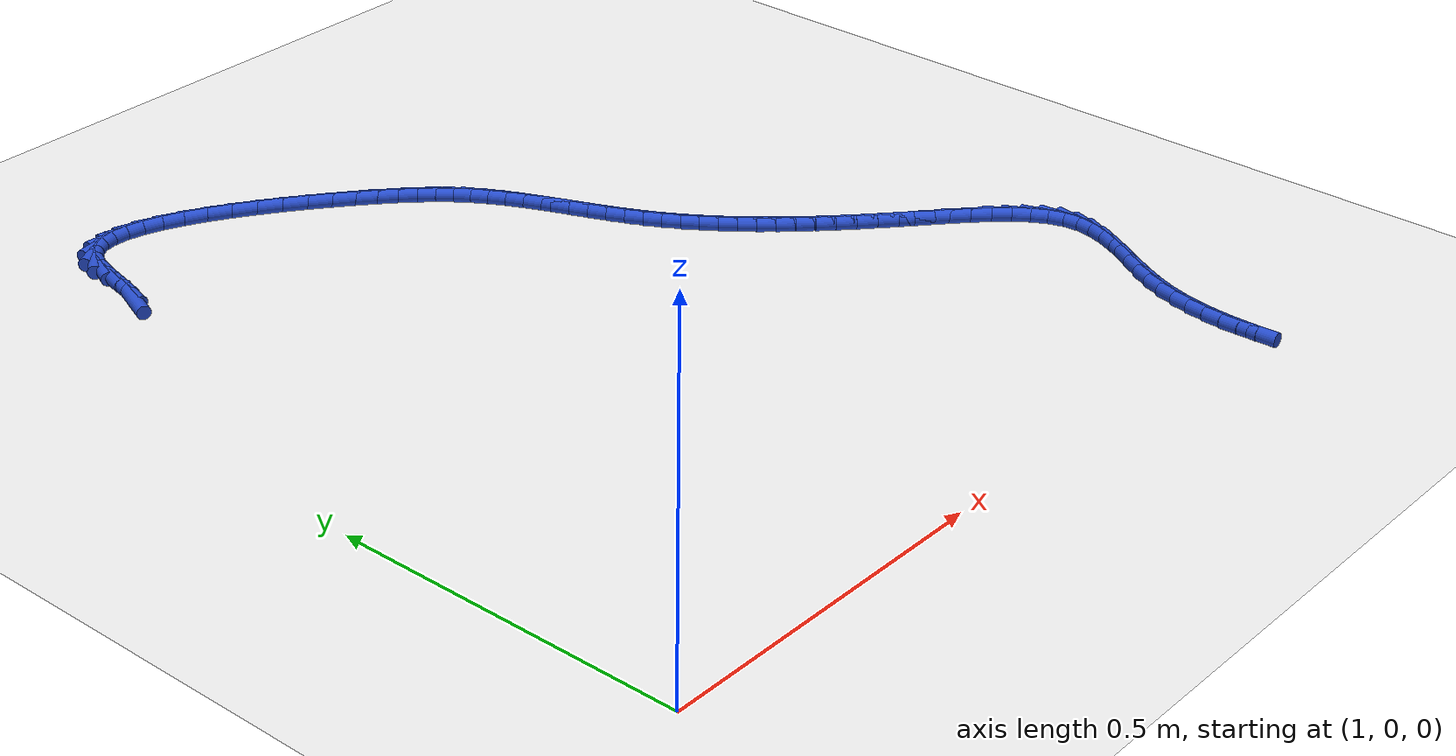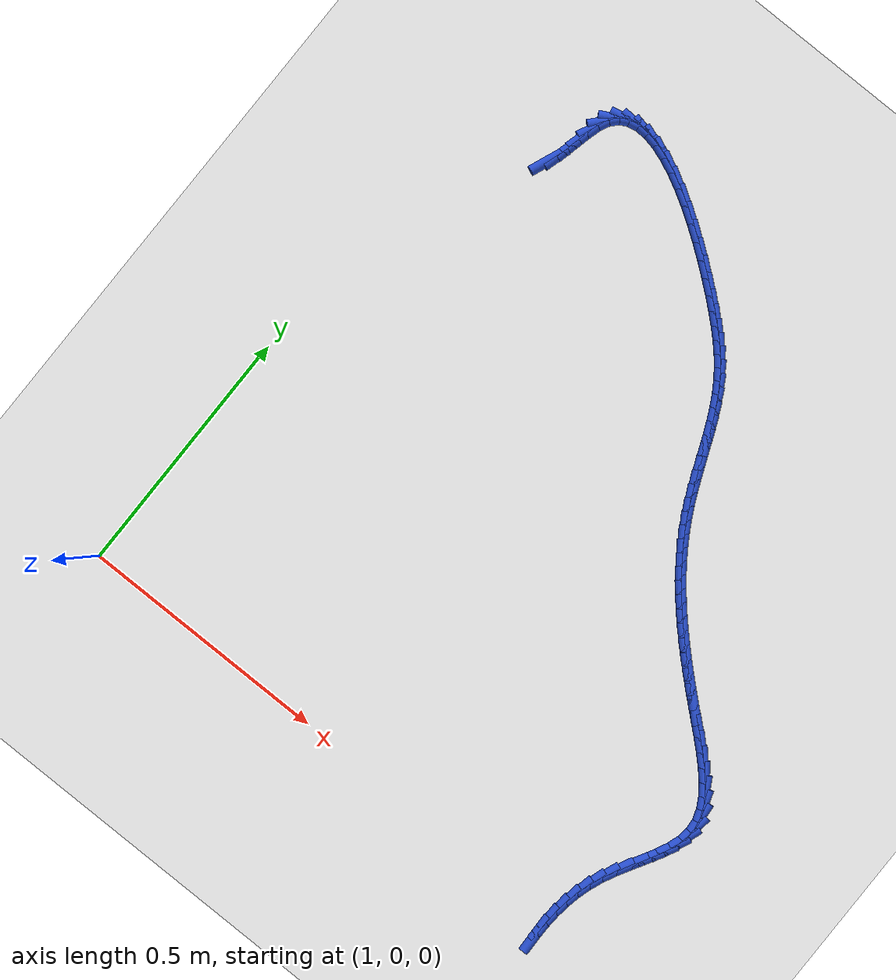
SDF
<sdf version="1.6">
 <world name="default">
  <model name="ground_plane">
   <static>1</static>
   <link name="link">
    <collision name="collision">
     <geometry><plane><normal>0 0 1</normal><size>100 100</size></plane></geometry>
     <surface><friction><ode><mu>100</mu><mu2>50</mu2></ode></friction></surface>
    </collision>
    <visual name="visual">
     <cast_shadows>0</cast_shadows>
     <geometry><plane><normal>0 0 1</normal><size>100 100</size></plane></geometry>
     <material>
      <script><uri>file://media/materials/scripts/gazebo.material</uri><name>Gazebo/WhiteGlow</name></script>
     </material>
    </visual>
   </link>
  </model>
  <model name="line">
   <link name="link_66">
    <pose>1.1893030818605963 1.0974402068774374 0.01 0 1.57 1.1950962762282933</pose>
    <collision name="collision">
     <geometry><cylinder><radius>0.01</radius><length>0.08</length></cylinder></geometry>
    </collision>
    <visual name="visual">
     <material>
      <script><name>Gazebo/Blue</name><uri>file://media/materials/scripts/gazebo.material</uri></script>
     </material>
     <geometry><cylinder><radius>0.01</radius><length>0.08</length></cylinder></geometry>
    </visual>
   </link>
   <link name="link_67">
    <pose>1.1990013495951997 1.122027933497424 0.01 0 1.57 1.3153344520101298</pose>
    <collision name="collision">
     <geometry><cylinder><radius>0.01</radius><length>0.08</length></cylinder></geometry>
    </collision>
    <visual name="visual">
     <material>
      <script><name>Gazebo/Blue</name><uri>file://media/materials/scripts/gazebo.material</uri></script>
     </material>
     <geometry><cylinder><radius>0.01</radius><length>0.08</length></cylinder></geometry>
    </visual>
   </link>
   <link name="link_68">
    <pose>1.2061188783692312 1.1492806072459916 0.01 0 1.57 1.3476424005962873</pose>
    <collision name="collision">
     <geometry><cylinder><radius>0.01</radius><length>0.08</length></cylinder></geometry>
    </collision>
    <visual name="visual">
     <material>
      <script><name>Gazebo/Blue</name><uri>file://media/materials/scripts/gazebo.material</uri></script>
     </material>
     <geometry><cylinder><radius>0.01</radius><length>0.08</length></cylinder></geometry>
    </visual>
   </link>
   <link name="link_69">
    <pose>1.2123724844480206 1.1768376164840482 0.01 0 1.57 1.299013703045849</pose>
    <collision name="collision">
     <geometry><cylinder><radius>0.01</radius><length>0.08</length></cylinder></geometry>
    </collision>
    <visual name="visual">
     <material>
      <script><name>Gazebo/Blue</name><uri>file://media/materials/scripts/gazebo.material</uri></script>
     </material>
     <geometry><cylinder><radius>0.01</radius><length>0.08</length></cylinder></geometry>
    </visual>
   </link>
   <link name="link_70">
    <pose>1.2194789840968956 1.2023383495725006 0.01 0 1.57 1.140623644467258</pose>
    <collision name="collision">
     <geometry><cylinder><radius>0.01</radius><length>0.08</length></cylinder></geometry>
    </collision>
    <visual name="visual">
     <material>
      <script><name>Gazebo/Blue</name><uri>file://media/materials/scripts/gazebo.material</uri></script>
     </material>
     <geometry><cylinder><radius>0.01</radius><length>0.08</length></cylinder></geometry>
    </visual>
   </link>
   <link name="link_71">
    <pose>1.2291537634521648 1.2234241077929882 0.01 0 1.57 0.8430474923591013</pose>
    <collision name="collision">
     <geometry><cylinder><radius>0.01</radius><length>0.08</length></cylinder></geometry>
    </collision>
    <visual name="visual">
     <material>
      <script><name>Gazebo/Blue</name><uri>file://media/materials/scripts/gazebo.material</uri></script>
     </material>
     <geometry><cylinder><radius>0.01</radius><length>0.08</length></cylinder></geometry>
    </visual>
   </link>
   <link name="link_72">
    <pose>1.2425609192650893 1.238473589457515 0.01 0 1.57 0.4998736898436517</pose>
    <collision name="collision">
     <geometry><cylinder><radius>0.01</radius><length>0.08</length></cylinder></geometry>
    </collision>
    <visual name="visual">
     <material>
      <script><name>Gazebo/Blue</name><uri>file://media/materials/scripts/gazebo.material</uri></script>
     </material>
     <geometry><cylinder><radius>0.01</radius><length>0.08</length></cylinder></geometry>
    </visual>
   </link>
   <link name="link_73">
    <pose>1.2594819613897101 1.2477148219235825 0.01 0 1.57 0.19478090766457262</pose>
    <collision name="collision">
     <geometry><cylinder><radius>0.01</radius><length>0.08</length></cylinder></geometry>
    </collision>
    <visual name="visual">
     <material>
      <script><name>Gazebo/Blue</name><uri>file://media/materials/scripts/gazebo.material</uri></script>
     </material>
     <geometry><cylinder><radius>0.01</radius><length>0.08</length></cylinder></geometry>
    </visual>
   </link>
   <link name="link_74">
    <pose>1.2794851355663666 1.2516610916673905 0.01 0 1.57 -0.03686080259224466</pose>
    <collision name="collision">
     <geometry><cylinder><radius>0.01</radius><length>0.08</length></cylinder></geometry>
    </collision>
    <visual name="visual">
     <material>
      <script><name>Gazebo/Blue</name><uri>file://media/materials/scripts/gazebo.material</uri></script>
     </material>
     <geometry><cylinder><radius>0.01</radius><length>0.08</length></cylinder></geometry>
    </visual>
   </link>
   <link name="link_75">
    <pose>1.302138687535398 1.250825685165139 0.01 0 1.57 -0.20239152097631471</pose>
    <collision name="collision">
     <geometry><cylinder><radius>0.01</radius><length>0.08</length></cylinder></geometry>
    </collision>
    <visual name="visual">
     <material>
      <script><name>Gazebo/Blue</name><uri>file://media/materials/scripts/gazebo.material</uri></script>
     </material>
     <geometry><cylinder><radius>0.01</radius><length>0.08</length></cylinder></geometry>
    </visual>
   </link>
   <link name="link_76">
    <pose>1.327010863037144 1.245721888893028 0.01 0 1.57 -0.3208236101117591</pose>
    <collision name="collision">
     <geometry><cylinder><radius>0.01</radius><length>0.08</length></cylinder></geometry>
    </collision>
    <visual name="visual">
     <material>
      <script><name>Gazebo/Blue</name><uri>file://media/materials/scripts/gazebo.material</uri></script>
     </material>
     <geometry><cylinder><radius>0.01</radius><length>0.08</length></cylinder></geometry>
    </visual>
   </link>
   <link name="link_77">
    <pose>1.3536699078119445 1.236862989327258 0.01 0 1.57 -0.4077426034506965</pose>
    <collision name="collision">
     <geometry><cylinder><radius>0.01</radius><length>0.08</length></cylinder></geometry>
    </collision>
    <visual name="visual">
     <material>
      <script><name>Gazebo/Blue</name><uri>file://media/materials/scripts/gazebo.material</uri></script>
     </material>
     <geometry><cylinder><radius>0.01</radius><length>0.08</length></cylinder></geometry>
    </visual>
   </link>
   <link name="link_78">
    <pose>1.3816840676001394 1.2247622729440288 0.01 0 1.57 -0.473563795478326</pose>
    <collision name="collision">
     <geometry><cylinder><radius>0.01</radius><length>0.08</length></cylinder></geometry>
    </collision>
    <visual name="visual">
     <material>
      <script><name>Gazebo/Blue</name><uri>file://media/materials/scripts/gazebo.material</uri></script>
     </material>
     <geometry><cylinder><radius>0.01</radius><length>0.08</length></cylinder></geometry>
    </visual>
   </link>
   <link name="link_79">
    <pose>1.4106215881420676 1.209933026219541 0.01 0 1.57 -0.5249630856622551</pose>
    <collision name="collision">
     <geometry><cylinder><radius>0.01</radius><length>0.08</length></cylinder></geometry>
    </collision>
    <visual name="visual">
     <material>
      <script><name>Gazebo/Blue</name><uri>file://media/materials/scripts/gazebo.material</uri></script>
     </material>
     <geometry><cylinder><radius>0.01</radius><length>0.08</length></cylinder></geometry>
    </visual>
   </link>
   <link name="link_80">
    <pose>1.4400507151780688 1.192888535629994 0.01 0 1.57 -0.5662640610322742</pose>
    <collision name="collision">
     <geometry><cylinder><radius>0.01</radius><length>0.08</length></cylinder></geometry>
    </collision>
    <visual name="visual">
     <material>
      <script><name>Gazebo/Blue</name><uri>file://media/materials/scripts/gazebo.material</uri></script>
     </material>
     <geometry><cylinder><radius>0.01</radius><length>0.08</length></cylinder></geometry>
    </visual>
   </link>
   <link name="link_81">
    <pose>1.4695396944484826 1.174142087651589 0.01 0 1.57 -0.6003521095952925</pose>
    <collision name="collision">
     <geometry><cylinder><radius>0.01</radius><length>0.08</length></cylinder></geometry>
    </collision>
    <visual name="visual">
     <material>
      <script><name>Gazebo/Blue</name><uri>file://media/materials/scripts/gazebo.material</uri></script>
     </material>
     <geometry><cylinder><radius>0.01</radius><length>0.08</length></cylinder></geometry>
    </visual>
   </link>
   <link name="link_82">
    <pose>1.4986567716936496 1.1542069687605245 0.01 0 1.57 -0.6292333115517629</pose>
    <collision name="collision">
     <geometry><cylinder><radius>0.01</radius><length>0.08</length></cylinder></geometry>
    </collision>
    <visual name="visual">
     <material>
      <script><name>Gazebo/Blue</name><uri>file://media/materials/scripts/gazebo.material</uri></script>
     </material>
     <geometry><cylinder><radius>0.01</radius><length>0.08</length></cylinder></geometry>
    </visual>
   </link>
   <link name="link_83">
    <pose>1.5269701926539083 1.1335964654330026 0.01 0 1.57 -0.6543802176660588</pose>
    <collision name="collision">
     <geometry><cylinder><radius>0.01</radius><length>0.08</length></cylinder></geometry>
    </collision>
    <visual name="visual">
     <material>
      <script><name>Gazebo/Blue</name><uri>file://media/materials/scripts/gazebo.material</uri></script>
     </material>
     <geometry><cylinder><radius>0.01</radius><length>0.08</length></cylinder></geometry>
    </visual>
   </link>
   <link name="link_84">
    <pose>1.5540482030695981 1.1128238641452224 0.01 0 1.57 -0.6769622745947211</pose>
    <collision name="collision">
     <geometry><cylinder><radius>0.01</radius><length>0.08</length></cylinder></geometry>
    </collision>
    <visual name="visual">
     <material>
      <script><name>Gazebo/Blue</name><uri>file://media/materials/scripts/gazebo.material</uri></script>
     </material>
     <geometry><cylinder><radius>0.01</radius><length>0.08</length></cylinder></geometry>
    </visual>
   </link>
   <link name="link_85">
    <pose>1.5794590486810591 1.0924024513733839 0.01 0 1.57 -0.6988539526534168</pose>
    <collision name="collision">
     <geometry><cylinder><radius>0.01</radius><length>0.08</length></cylinder></geometry>
    </collision>
    <visual name="visual">
     <material>
      <script><name>Gazebo/Blue</name><uri>file://media/materials/scripts/gazebo.material</uri></script>
     </material>
     <geometry><cylinder><radius>0.01</radius><length>0.08</length></cylinder></geometry>
    </visual>
   </link>
   <link name="link_86">
    <pose>1.6028214524818725 1.072770295519623 0.01 0 1.57 -0.7272483644969464</pose>
    <collision name="collision">
     <geometry><cylinder><radius>0.01</radius><length>0.08</length></cylinder></geometry>
    </collision>
    <visual name="visual">
     <material>
      <script><name>Gazebo/Blue</name><uri>file://media/materials/scripts/gazebo.material</uri></script>
     </material>
     <geometry><cylinder><radius>0.01</radius><length>0.08</length></cylinder></geometry>
    </visual>
   </link>
   <link name="link_87">
    <pose>1.6241285716240361 1.0538075064116323 0.01 0 1.57 -0.7657261601398747</pose>
    <collision name="collision">
     <geometry><cylinder><radius>0.01</radius><length>0.08</length></cylinder></geometry>
    </collision>
    <visual name="visual">
     <material>
      <script><name>Gazebo/Blue</name><uri>file://media/materials/scripts/gazebo.material</uri></script>
     </material>
     <geometry><cylinder><radius>0.01</radius><length>0.08</length></cylinder></geometry>
    </visual>
   </link>
   <link name="link_88">
    <pose>1.643541925592467 1.0351433107641346 0.01 0 1.57 -0.8143762361381833</pose>
    <collision name="collision">
     <geometry><cylinder><radius>0.01</radius><length>0.08</length></cylinder></geometry>
    </collision>
    <visual name="visual">
     <material>
      <script><name>Gazebo/Blue</name><uri>file://media/materials/scripts/gazebo.material</uri></script>
     </material>
     <geometry><cylinder><radius>0.01</radius><length>0.08</length></cylinder></geometry>
    </visual>
   </link>
   <link name="link_89">
    <pose>1.661223839671707 1.0164057345392028 0.01 0 1.57 -0.8721628618640554</pose>
    <collision name="collision">
     <geometry><cylinder><radius>0.01</radius><length>0.08</length></cylinder></geometry>
    </collision>
    <visual name="visual">
     <material>
      <script><name>Gazebo/Blue</name><uri>file://media/materials/scripts/gazebo.material</uri></script>
     </material>
     <geometry><cylinder><radius>0.01</radius><length>0.08</length></cylinder></geometry>
    </visual>
   </link>
   <link name="link_90">
    <pose>1.6773366391462947 0.9972228036989104 0.01 0 1.57 -0.9367756517731081</pose>
    <collision name="collision">
     <geometry><cylinder><radius>0.01</radius><length>0.08</length></cylinder></geometry>
    </collision>
    <visual name="visual">
     <material>
      <script><name>Gazebo/Blue</name><uri>file://media/materials/scripts/gazebo.material</uri></script>
     </material>
     <geometry><cylinder><radius>0.01</radius><length>0.08</length></cylinder></geometry>
    </visual>
   </link>
   <link name="link_91">
    <pose>1.6920426493007696 0.9772225442053298 0.01 0 1.57 -1.0046130788429728</pose>
    <collision name="collision">
     <geometry><cylinder><radius>0.01</radius><length>0.08</length></cylinder></geometry>
    </collision>
    <visual name="visual">
     <material>
      <script><name>Gazebo/Blue</name><uri>file://media/materials/scripts/gazebo.material</uri></script>
     </material>
     <geometry><cylinder><radius>0.01</radius><length>0.08</length></cylinder></geometry>
    </visual>
   </link>
   <link name="link_92">
    <pose>1.7055050954557922 0.95604174947842 0.01 0 1.57 -1.0657039013976144</pose>
    <collision name="collision">
     <geometry><cylinder><radius>0.01</radius><length>0.08</length></cylinder></geometry>
    </collision>
    <visual name="visual">
     <material>
      <script><name>Gazebo/Blue</name><uri>file://media/materials/scripts/gazebo.material</uri></script>
     </material>
     <geometry><cylinder><radius>0.01</radius><length>0.08</length></cylinder></geometry>
    </visual>
   </link>
   <link name="link_93">
    <pose>1.7179158651451343 0.9335964181170909 0.01 0 1.57 -1.1121636709397418</pose>
    <collision name="collision">
     <geometry><cylinder><radius>0.01</radius><length>0.08</length></cylinder></geometry>
    </collision>
    <visual name="visual">
     <material>
      <script><name>Gazebo/Blue</name><uri>file://media/materials/scripts/gazebo.material</uri></script>
     </material>
     <geometry><cylinder><radius>0.01</radius><length>0.08</length></cylinder></geometry>
    </visual>
   </link>
   <link name="link_94">
    <pose>1.7295007838472274 0.9101331460079343 0.01 0 1.57 -1.1448596393468295</pose>
    <collision name="collision">
     <geometry><cylinder><radius>0.01</radius><length>0.08</length></cylinder></geometry>
    </collision>
    <visual name="visual">
     <material>
      <script><name>Gazebo/Blue</name><uri>file://media/materials/scripts/gazebo.material</uri></script>
     </material>
     <geometry><cylinder><radius>0.01</radius><length>0.08</length></cylinder></geometry>
    </visual>
   </link>
   <link name="link_95">
    <pose>1.7404876416737591 0.8859176669797831 0.01 0 1.57 -1.1648777311139262</pose>
    <collision name="collision">
     <geometry><cylinder><radius>0.01</radius><length>0.08</length></cylinder></geometry>
    </collision>
    <visual name="visual">
     <material>
      <script><name>Gazebo/Blue</name><uri>file://media/materials/scripts/gazebo.material</uri></script>
     </material>
     <geometry><cylinder><radius>0.01</radius><length>0.08</length></cylinder></geometry>
    </visual>
   </link>
   <link name="link_96">
    <pose>1.7511042287364156 0.8612157148614714 0.01 0 1.57 -1.1729440643444753</pose>
    <collision name="collision">
     <geometry><cylinder><radius>0.01</radius><length>0.08</length></cylinder></geometry>
    </collision>
    <visual name="visual">
     <material>
      <script><name>Gazebo/Blue</name><uri>file://media/materials/scripts/gazebo.material</uri></script>
     </material>
     <geometry><cylinder><radius>0.01</radius><length>0.08</length></cylinder></geometry>
    </visual>
   </link>
   <link name="link_97">
    <pose>1.761578335146884 0.8362930234818324 0.01 0 1.57 -1.169388988273092</pose>
    <collision name="collision">
     <geometry><cylinder><radius>0.01</radius><length>0.08</length></cylinder></geometry>
    </collision>
    <visual name="visual">
     <material>
      <script><name>Gazebo/Blue</name><uri>file://media/materials/scripts/gazebo.material</uri></script>
     </material>
     <geometry><cylinder><radius>0.01</radius><length>0.08</length></cylinder></geometry>
    </visual>
   </link>
   <link name="link_98">
    <pose>1.7721377510168503 0.8114153266696994 0.01 0 1.57 -1.1541413308756854</pose>
    <collision name="collision">
     <geometry><cylinder><radius>0.01</radius><length>0.08</length></cylinder></geometry>
    </collision>
    <visual name="visual">
     <material>
      <script><name>Gazebo/Blue</name><uri>file://media/materials/scripts/gazebo.material</uri></script>
     </material>
     <geometry><cylinder><radius>0.01</radius><length>0.08</length></cylinder></geometry>
    </visual>
   </link>
   <link name="link_99">
    <pose>1.783010266458001 0.7868483582539054 0.01 0 1.57 -1.1267388934678915</pose>
    <collision name="collision">
     <geometry><cylinder><radius>0.01</radius><length>0.08</length></cylinder></geometry>
    </collision>
    <visual name="visual">
     <material>
      <script><name>Gazebo/Blue</name><uri>file://media/materials/scripts/gazebo.material</uri></script>
     </material>
     <geometry><cylinder><radius>0.01</radius><length>0.08</length></cylinder></geometry>
    </visual>
   </link>
   <link name="link_100">
    <pose>1.7944236715820232 0.762857852063284 0.01 0 1.57 -1.0883736327479534</pose>
    <collision name="collision">
     <geometry><cylinder><radius>0.01</radius><length>0.08</length></cylinder></geometry>
    </collision>
    <visual name="visual">
     <material>
      <script><name>Gazebo/Blue</name><uri>file://media/materials/scripts/gazebo.material</uri></script>
     </material>
     <geometry><cylinder><radius>0.01</radius><length>0.08</length></cylinder></geometry>
    </visual>
   </link>
   <link name="link_101">
    <pose>1.806572114352905 0.7396602573654656 0.01 0 1.57 -1.0478982110981125</pose>
    <collision name="collision">
     <geometry><cylinder><radius>0.01</radius><length>0.08</length></cylinder></geometry>
    </collision>
    <visual name="visual">
     <material>
      <script><name>Gazebo/Blue</name><uri>file://media/materials/scripts/gazebo.material</uri></script>
     </material>
     <geometry><cylinder><radius>0.01</radius><length>0.08</length></cylinder></geometry>
    </visual>
   </link>
   <link name="link_102">
    <pose>1.8194936155062438 0.7172433025386692 0.01 0 1.57 -1.008380726378558</pose>
    <collision name="collision">
     <geometry><cylinder><radius>0.01</radius><length>0.08</length></cylinder></geometry>
    </collision>
    <visual name="visual">
     <material>
      <script><name>Gazebo/Blue</name><uri>file://media/materials/scripts/gazebo.material</uri></script>
     </material>
     <geometry><cylinder><radius>0.01</radius><length>0.08</length></cylinder></geometry>
    </visual>
   </link>
   <link name="link_103">
    <pose>1.8331809378637245 0.6955284147116143 0.01 0 1.57 -0.9702636889963249</pose>
    <collision name="collision">
     <geometry><cylinder><radius>0.01</radius><length>0.08</length></cylinder></geometry>
    </collision>
    <visual name="visual">
     <material>
      <script><name>Gazebo/Blue</name><uri>file://media/materials/scripts/gazebo.material</uri></script>
     </material>
     <geometry><cylinder><radius>0.01</radius><length>0.08</length></cylinder></geometry>
    </visual>
   </link>
   <link name="link_104">
    <pose>1.8476268395067816 0.6744370140687218 0.01 0 1.57 -0.9339513973474087</pose>
    <collision name="collision">
     <geometry><cylinder><radius>0.01</radius><length>0.08</length></cylinder></geometry>
    </collision>
    <visual name="visual">
     <material>
      <script><name>Gazebo/Blue</name><uri>file://media/materials/scripts/gazebo.material</uri></script>
     </material>
     <geometry><cylinder><radius>0.01</radius><length>0.08</length></cylinder></geometry>
    </visual>
   </link>
   <link name="link_105">
    <pose>1.8628240785168488 0.6538905207944131 0.01 0 1.57 -0.8997954227482582</pose>
    <collision name="collision">
     <geometry><cylinder><radius>0.01</radius><length>0.08</length></cylinder></geometry>
    </collision>
    <visual name="visual">
     <material>
      <script><name>Gazebo/Blue</name><uri>file://media/materials/scripts/gazebo.material</uri></script>
     </material>
     <geometry><cylinder><radius>0.01</radius><length>0.08</length></cylinder></geometry>
    </visual>
   </link>
   <link name="link_106">
    <pose>1.8787654129753606 0.6338103550731089 0.01 0 1.57 -0.8680846432498506</pose>
    <collision name="collision">
     <geometry><cylinder><radius>0.01</radius><length>0.08</length></cylinder></geometry>
    </collision>
    <visual name="visual">
     <material>
      <script><name>Gazebo/Blue</name><uri>file://media/materials/scripts/gazebo.material</uri></script>
     </material>
     <geometry><cylinder><radius>0.01</radius><length>0.08</length></cylinder></geometry>
    </visual>
   </link>
   <link name="link_107">
    <pose>1.8954436009637514 0.6141179370892305 0.01 0 1.57 -0.8390404306166683</pose>
    <collision name="collision">
     <geometry><cylinder><radius>0.01</radius><length>0.08</length></cylinder></geometry>
    </collision>
    <visual name="visual">
     <material>
      <script><name>Gazebo/Blue</name><uri>file://media/materials/scripts/gazebo.material</uri></script>
     </material>
     <geometry><cylinder><radius>0.01</radius><length>0.08</length></cylinder></geometry>
    </visual>
   </link>
   <link name="link_108">
    <pose>1.9128514005634563 0.5947346870271988 0.01 0 1.57 -0.8128165860290484</pose>
    <collision name="collision">
     <geometry><cylinder><radius>0.01</radius><length>0.08</length></cylinder></geometry>
    </collision>
    <visual name="visual">
     <material>
      <script><name>Gazebo/Blue</name><uri>file://media/materials/scripts/gazebo.material</uri></script>
     </material>
     <geometry><cylinder><radius>0.01</radius><length>0.08</length></cylinder></geometry>
    </visual>
   </link>
   <link name="link_109">
    <pose>1.9309815698559094 0.5755820250714346 0.01 0 1.57 -0.7895031131428626</pose>
    <collision name="collision">
     <geometry><cylinder><radius>0.01</radius><length>0.08</length></cylinder></geometry>
    </collision>
    <visual name="visual">
     <material>
      <script><name>Gazebo/Blue</name><uri>file://media/materials/scripts/gazebo.material</uri></script>
     </material>
     <geometry><cylinder><radius>0.01</radius><length>0.08</length></cylinder></geometry>
    </visual>
   </link>
   <link name="link_110">
    <pose>1.9498268669225445 0.5565813714063595 0.01 0 1.57 -0.7691326776701348</pose>
    <collision name="collision">
     <geometry><cylinder><radius>0.01</radius><length>0.08</length></cylinder></geometry>
    </collision>
    <visual name="visual">
     <material>
      <script><name>Gazebo/Blue</name><uri>file://media/materials/scripts/gazebo.material</uri></script>
     </material>
     <geometry><cylinder><radius>0.01</radius><length>0.08</length></cylinder></geometry>
    </visual>
   </link>
   <link name="link_111">
    <pose>1.9693800498447969 0.5376541462163945 0.01 0 1.57 -0.7516886013548311</pose>
    <collision name="collision">
     <geometry><cylinder><radius>0.01</radius><length>0.08</length></cylinder></geometry>
    </collision>
    <visual name="visual">
     <material>
      <script><name>Gazebo/Blue</name><uri>file://media/materials/scripts/gazebo.material</uri></script>
     </material>
     <geometry><cylinder><radius>0.01</radius><length>0.08</length></cylinder></geometry>
    </visual>
   </link>
   <link name="link_112">
    <pose>1.9896338767041 0.5187217696859601 0.01 0 1.57 -0.7371134010757884</pose>
    <collision name="collision">
     <geometry><cylinder><radius>0.01</radius><length>0.08</length></cylinder></geometry>
    </collision>
    <visual name="visual">
     <material>
      <script><name>Gazebo/Blue</name><uri>file://media/materials/scripts/gazebo.material</uri></script>
     </material>
     <geometry><cylinder><radius>0.01</radius><length>0.08</length></cylinder></geometry>
    </visual>
   </link>
   <link name="link_113">
    <pose>2.0105811055818896 0.49970566199947763 0.01 0 1.57 -0.7253171274632365</pose>
    <collision name="collision">
     <geometry><cylinder><radius>0.01</radius><length>0.08</length></cylinder></geometry>
    </collision>
    <visual name="visual">
     <material>
      <script><name>Gazebo/Blue</name><uri>file://media/materials/scripts/gazebo.material</uri></script>
     </material>
     <geometry><cylinder><radius>0.01</radius><length>0.08</length></cylinder></geometry>
    </visual>
   </link>
   <link name="link_114">
    <pose>2.0322144945595997 0.48052724334136854 0.01 0 1.57 -0.7162503553660784</pose>
    <collision name="collision">
     <geometry><cylinder><radius>0.01</radius><length>0.08</length></cylinder></geometry>
    </collision>
    <visual name="visual">
     <material>
      <script><name>Gazebo/Blue</name><uri>file://media/materials/scripts/gazebo.material</uri></script>
     </material>
     <geometry><cylinder><radius>0.01</radius><length>0.08</length></cylinder></geometry>
    </visual>
   </link>
   <link name="link_115">
    <pose>2.0545236412146592 0.46110812252561945 0.01 0 1.57 -0.7154389428045672</pose>
    <collision name="collision">
     <geometry><cylinder><radius>0.01</radius><length>0.08</length></cylinder></geometry>
    </collision>
    <visual name="visual">
     <material>
      <script><name>Gazebo/Blue</name><uri>file://media/materials/scripts/gazebo.material</uri></script>
     </material>
     <geometry><cylinder><radius>0.01</radius><length>0.08</length></cylinder></geometry>
    </visual>
   </link>
   <link name="link_116">
    <pose>2.0772172680389756 0.4413866719410851 0.01 0 1.57 -0.7327088065797862</pose>
    <collision name="collision">
     <geometry><cylinder><radius>0.01</radius><length>0.08</length></cylinder></geometry>
    </collision>
    <visual name="visual">
     <material>
      <script><name>Gazebo/Blue</name><uri>file://media/materials/scripts/gazebo.material</uri></script>
     </material>
     <geometry><cylinder><radius>0.01</radius><length>0.08</length></cylinder></geometry>
    </visual>
   </link>
   <link name="link_117">
    <pose>2.0995061295883763 0.42133098438689554 0.01 0 1.57 -0.770326071234913</pose>
    <collision name="collision">
     <geometry><cylinder><radius>0.01</radius><length>0.08</length></cylinder></geometry>
    </collision>
    <visual name="visual">
     <material>
      <script><name>Gazebo/Blue</name><uri>file://media/materials/scripts/gazebo.material</uri></script>
     </material>
     <geometry><cylinder><radius>0.01</radius><length>0.08</length></cylinder></geometry>
    </visual>
   </link>
   <link name="link_118">
    <pose>2.120549886383691 0.40091220212696166 0.01 0 1.57 -0.8319440151642855</pose>
    <collision name="collision">
     <geometry><cylinder><radius>0.01</radius><length>0.08</length></cylinder></geometry>
    </collision>
    <visual name="visual">
     <material>
      <script><name>Gazebo/Blue</name><uri>file://media/materials/scripts/gazebo.material</uri></script>
     </material>
     <geometry><cylinder><radius>0.01</radius><length>0.08</length></cylinder></geometry>
    </visual>
   </link>
   <link name="link_119">
    <pose>2.1395081989457516 0.38010146742519385 0.01 0 1.57 -0.9240215232577753</pose>
    <collision name="collision">
     <geometry><cylinder><radius>0.01</radius><length>0.08</length></cylinder></geometry>
    </collision>
    <visual name="visual">
     <material>
      <script><name>Gazebo/Blue</name><uri>file://media/materials/scripts/gazebo.material</uri></script>
     </material>
     <geometry><cylinder><radius>0.01</radius><length>0.08</length></cylinder></geometry>
    </visual>
   </link>
   <link name="link_120">
    <pose>2.155540727795389 0.35886992254550254 0.01 0 1.57 -1.0559323850460622</pose>
    <collision name="collision">
     <geometry><cylinder><radius>0.01</radius><length>0.08</length></cylinder></geometry>
    </collision>
    <visual name="visual">
     <material>
      <script><name>Gazebo/Blue</name><uri>file://media/materials/scripts/gazebo.material</uri></script>
     </material>
     <geometry><cylinder><radius>0.01</radius><length>0.08</length></cylinder></geometry>
    </visual>
   </link>
   <link name="link_121">
    <pose>2.1678071334534352 0.3371887097517983 0.01 0 1.57 -1.2379847205708086</pose>
    <collision name="collision">
     <geometry><cylinder><radius>0.01</radius><length>0.08</length></cylinder></geometry>
    </collision>
    <visual name="visual">
     <material>
      <script><name>Gazebo/Blue</name><uri>file://media/materials/scripts/gazebo.material</uri></script>
     </material>
     <geometry><cylinder><radius>0.01</radius><length>0.08</length></cylinder></geometry>
    </visual>
   </link>
   <link name="link_122">
    <pose>2.1754670764407202 0.3150289713079912 0.01 0 1.57 -1.4730986204207743</pose>
    <collision name="collision">
     <geometry><cylinder><radius>0.01</radius><length>0.08</length></cylinder></geometry>
    </collision>
    <visual name="visual">
     <material>
      <script><name>Gazebo/Blue</name><uri>file://media/materials/scripts/gazebo.material</uri></script>
     </material>
     <geometry><cylinder><radius>0.01</radius><length>0.08</length></cylinder></geometry>
    </visual>
   </link>
   <link name="link_123">
    <pose>2.1776886475342283 0.29236212996247685 0.01 0 1.57 1.4272017197529758</pose>
    <collision name="collision">
     <geometry><cylinder><radius>0.01</radius><length>0.08</length></cylinder></geometry>
    </collision>
    <visual name="visual">
     <material>
      <script><name>Gazebo/Blue</name><uri>file://media/materials/scripts/gazebo.material</uri></script>
     </material>
     <geometry><cylinder><radius>0.01</radius><length>0.08</length></cylinder></geometry>
    </visual>
   </link>
   <link name="link_124">
    <pose>2.174337154576304 0.26918280569104563 0.01 0 1.57 1.2503567820717079</pose>
    <collision name="collision">
     <geometry><cylinder><radius>0.01</radius><length>0.08</length></cylinder></geometry>
    </collision>
    <visual name="visual">
     <material>
      <script><name>Gazebo/Blue</name><uri>file://media/materials/scripts/gazebo.material</uri></script>
     </material>
     <geometry><cylinder><radius>0.01</radius><length>0.08</length></cylinder></geometry>
    </visual>
   </link>
   <link name="link_125">
    <pose>2.1664859352680446 0.24552581103608961 0.01 0 1.57 1.1371549840233595</pose>
    <collision name="collision">
     <geometry><cylinder><radius>0.01</radius><length>0.08</length></cylinder></geometry>
    </collision>
    <visual name="visual">
     <material>
      <script><name>Gazebo/Blue</name><uri>file://media/materials/scripts/gazebo.material</uri></script>
     </material>
     <geometry><cylinder><radius>0.01</radius><length>0.08</length></cylinder></geometry>
    </visual>
   </link>
   <link name="link_126">
    <pose>2.15532869872585 0.22142996343780244 0.01 0 1.57 1.0743438635554179</pose>
    <collision name="collision">
     <geometry><cylinder><radius>0.01</radius><length>0.08</length></cylinder></geometry>
    </collision>
    <visual name="visual">
     <material>
      <script><name>Gazebo/Blue</name><uri>file://media/materials/scripts/gazebo.material</uri></script>
     </material>
     <geometry><cylinder><radius>0.01</radius><length>0.08</length></cylinder></geometry>
    </visual>
   </link>
   <link name="link_127">
    <pose>2.1420591540661227 0.19693408033637927 0.01 0 1.57 1.0521329771019805</pose>
    <collision name="collision">
     <geometry><cylinder><radius>0.01</radius><length>0.08</length></cylinder></geometry>
    </collision>
    <visual name="visual">
     <material>
      <script><name>Gazebo/Blue</name><uri>file://media/materials/scripts/gazebo.material</uri></script>
     </material>
     <geometry><cylinder><radius>0.01</radius><length>0.08</length></cylinder></geometry>
    </visual>
   </link>
   <link name="link_128">
    <pose>2.127871010405264 0.1720769791720139 0.01 0 1.57 1.0659944131884131</pose>
    <collision name="collision">
     <geometry><cylinder><radius>0.01</radius><length>0.08</length></cylinder></geometry>
    </collision>
    <visual name="visual">
     <material>
      <script><name>Gazebo/Blue</name><uri>file://media/materials/scripts/gazebo.material</uri></script>
     </material>
     <geometry><cylinder><radius>0.01</radius><length>0.08</length></cylinder></geometry>
    </visual>
   </link>
   <link name="link_129">
    <pose>2.1139579768596755 0.14689747738490055 0.01 0 1.57 1.1162166853875142</pose>
    <collision name="collision">
     <geometry><cylinder><radius>0.01</radius><length>0.08</length></cylinder></geometry>
    </collision>
    <visual name="visual">
     <material>
      <script><name>Gazebo/Blue</name><uri>file://media/materials/scripts/gazebo.material</uri></script>
     </material>
     <geometry><cylinder><radius>0.01</radius><length>0.08</length></cylinder></geometry>
    </visual>
   </link>
   <link name="link_130">
    <pose>2.101513762545758 0.12143439241523349 0.01 0 1.57 1.1998204948886244</pose>
    <collision name="collision">
     <geometry><cylinder><radius>0.01</radius><length>0.08</length></cylinder></geometry>
    </collision>
    <visual name="visual">
     <material>
      <script><name>Gazebo/Blue</name><uri>file://media/materials/scripts/gazebo.material</uri></script>
     </material>
     <geometry><cylinder><radius>0.01</radius><length>0.08</length></cylinder></geometry>
    </visual>
   </link>
   <link name="link_131">
    <pose>2.091512842899417 0.09572417671635959 0.01 0 1.57 1.2877654886029755</pose>
    <collision name="collision">
     <geometry><cylinder><radius>0.01</radius><length>0.08</length></cylinder></geometry>
    </collision>
    <visual name="visual">
     <material>
      <script><name>Gazebo/Blue</name><uri>file://media/materials/scripts/gazebo.material</uri></script>
     </material>
     <geometry><cylinder><radius>0.01</radius><length>0.08</length></cylinder></geometry>
    </visual>
   </link>
   <link name="link_132">
    <pose>2.0839710374079172 0.06979294122519494 0.01 0 1.57 1.3696117897772495</pose>
    <collision name="collision">
     <geometry><cylinder><radius>0.01</radius><length>0.08</length></cylinder></geometry>
    </collision>
    <visual name="visual">
     <material>
      <script><name>Gazebo/Blue</name><uri>file://media/materials/scripts/gazebo.material</uri></script>
     </material>
     <geometry><cylinder><radius>0.01</radius><length>0.08</length></cylinder></geometry>
    </visual>
   </link>
   <link name="link_133">
    <pose>2.078642202621174 0.04366397094926339 0.01 0 1.57 1.443669029669192</pose>
    <collision name="collision">
     <geometry><cylinder><radius>0.01</radius><length>0.08</length></cylinder></geometry>
    </collision>
    <visual name="visual">
     <material>
      <script><name>Gazebo/Blue</name><uri>file://media/materials/scripts/gazebo.material</uri></script>
     </material>
     <geometry><cylinder><radius>0.01</radius><length>0.08</length></cylinder></geometry>
    </visual>
   </link>
   <link name="link_134">
    <pose>2.0752801888118815 0.01736055082837355 0.01 0 1.57 1.5088319705163185</pose>
    <collision name="collision">
     <geometry><cylinder><radius>0.01</radius><length>0.08</length></cylinder></geometry>
    </collision>
    <visual name="visual">
     <material>
      <script><name>Gazebo/Blue</name><uri>file://media/materials/scripts/gazebo.material</uri></script>
     </material>
     <geometry><cylinder><radius>0.01</radius><length>0.08</length></cylinder></geometry>
    </visual>
   </link>
   <link name="link_135">
    <pose>2.073638846252731 -0.009094034197666388 0.01 0 1.57 1.5645208047001813</pose>
    <collision name="collision">
     <geometry><cylinder><radius>0.01</radius><length>0.08</length></cylinder></geometry>
    </collision>
    <visual name="visual">
     <material>
      <script><name>Gazebo/Blue</name><uri>file://media/materials/scripts/gazebo.material</uri></script>
     </material>
     <geometry><cylinder><radius>0.01</radius><length>0.08</length></cylinder></geometry>
    </visual>
   </link>
   <link name="link_136">
    <pose>2.0734720252164145 -0.035676499189047015 0.01 0 1.57 -1.5310395531557892</pose>
    <collision name="collision">
     <geometry><cylinder><radius>0.01</radius><length>0.08</length></cylinder></geometry>
    </collision>
    <visual name="visual">
     <material>
      <script><name>Gazebo/Blue</name><uri>file://media/materials/scripts/gazebo.material</uri></script>
     </material>
     <geometry><cylinder><radius>0.01</radius><length>0.08</length></cylinder></geometry>
    </visual>
   </link>
  </model>
 </world>
</sdf>
